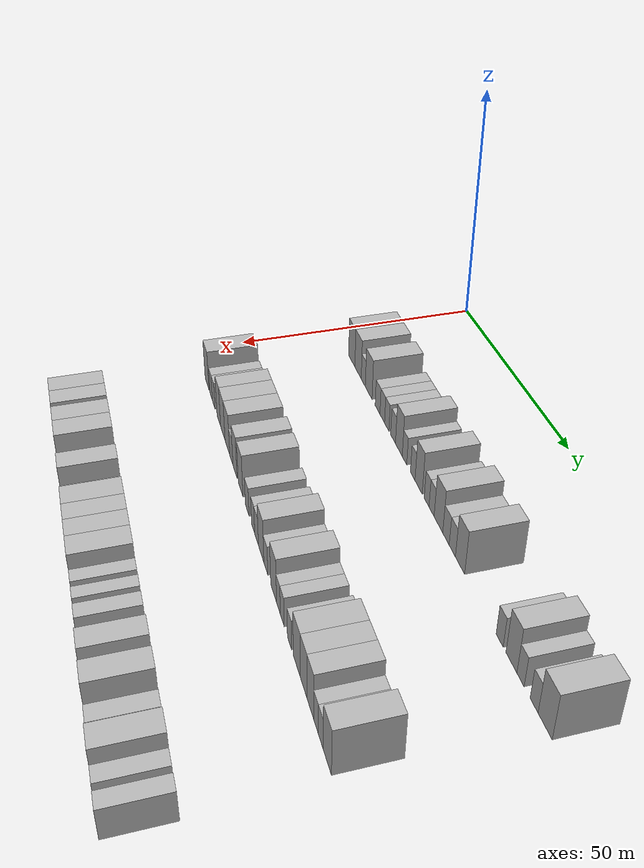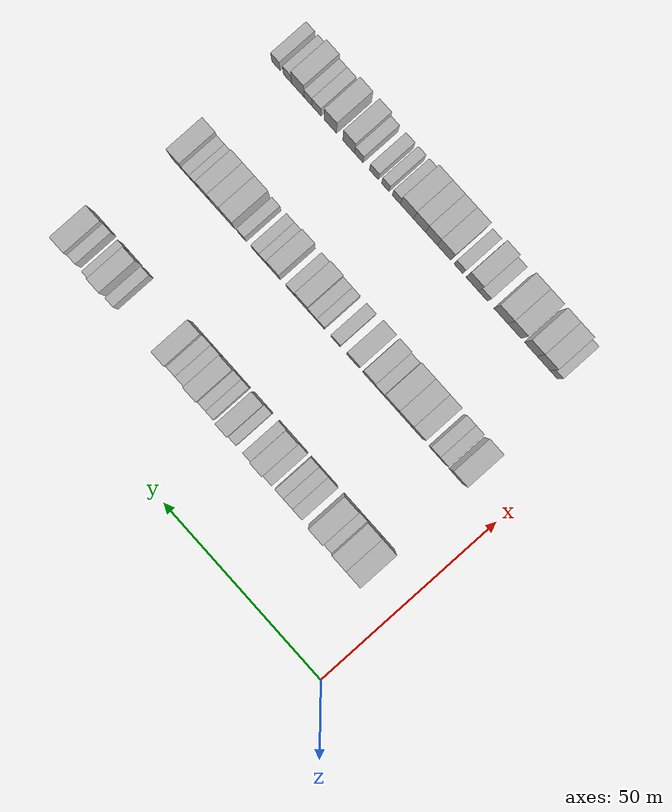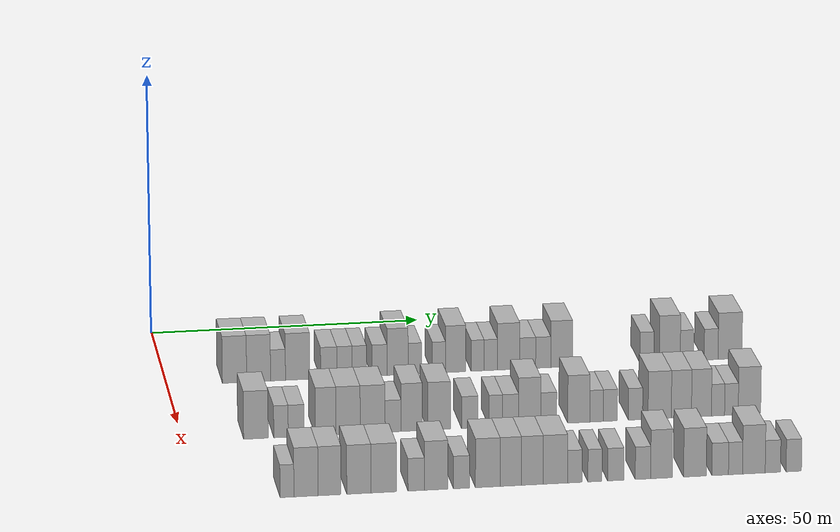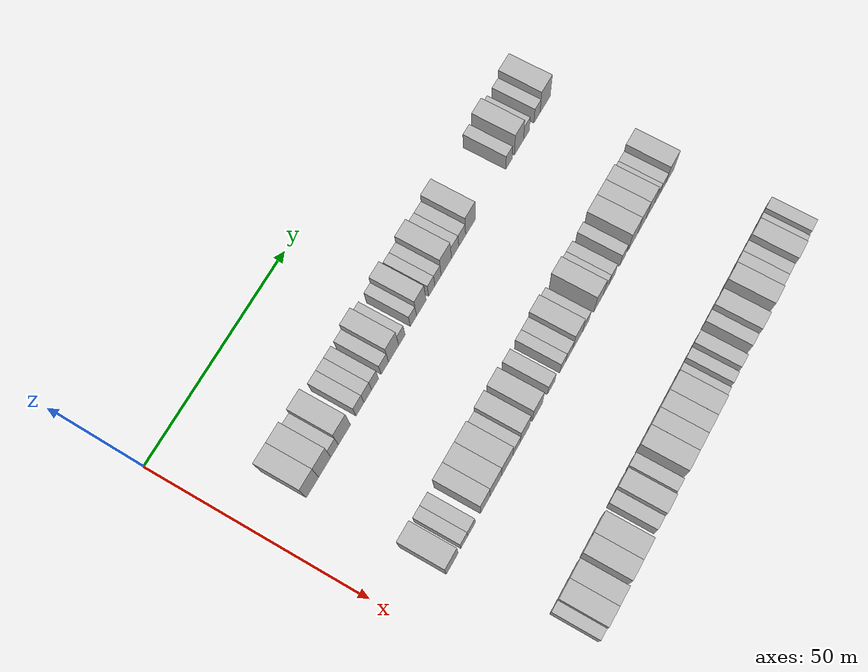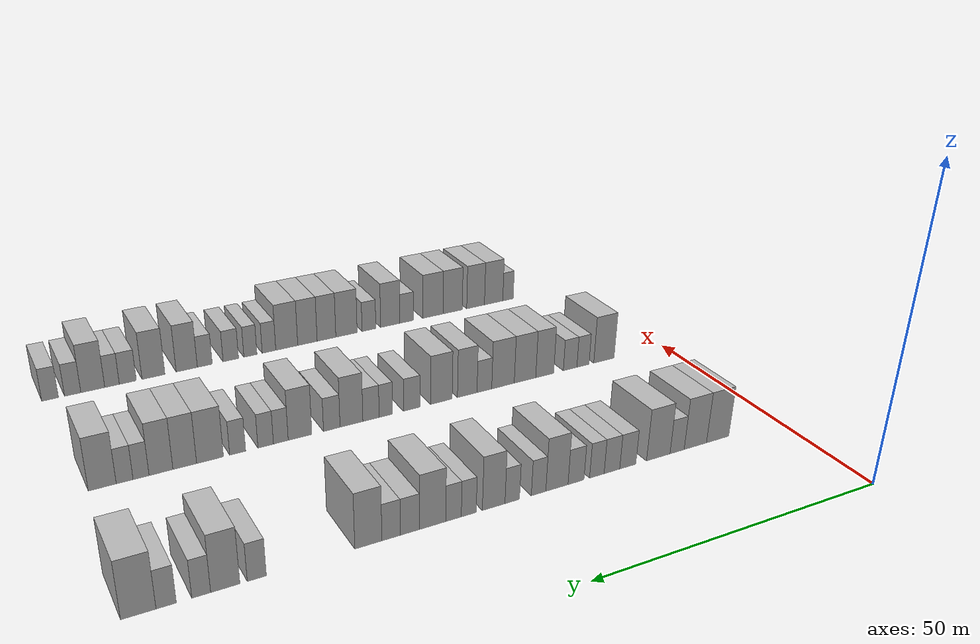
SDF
<sdf version="1.6">
 <world name="default">
  <model name="building_75">
   <static>1</static>
   <pose>25.0000 12.3740 0 0.000000 0.000000 0.000000</pose>
   <link name="link">
    <pose>0 0 4.50 0 0 0</pose>
    <collision name="collision"><geometry><box><size>10.0000 4.4400 9.0000</size></box></geometry></collision>
    <visual name="visual">
     <cast_shadows>0</cast_shadows>
     <geometry><box><size>10.0000 4.4400 9.0000</size></box></geometry>
     <material>
      <script>
       <uri>model://HANNAS_wall/materials/scripts</uri>
       <uri>model://HANNAS_wall/materials/textures</uri>
       <name>vrc/HANNAS_wall</name>
      </script>
     </material>
    </visual>
   </link>
  </model>
  <model name="building_76">
   <static>1</static>
   <pose>25.0000 16.7879 0 0.000000 0.000000 0.000000</pose>
   <link name="link">
    <pose>0 0 4.50 0 0 0</pose>
    <collision name="collision"><geometry><box><size>10.0000 4.3877 9.0000</size></box></geometry></collision>
    <visual name="visual">
     <cast_shadows>0</cast_shadows>
     <geometry><box><size>10.0000 4.3877 9.0000</size></box></geometry>
     <material>
      <script>
       <uri>model://HANNAS_wall/materials/scripts</uri>
       <uri>model://HANNAS_wall/materials/textures</uri>
       <name>vrc/HANNAS_wall</name>
      </script>
     </material>
    </visual>
   </link>
  </model>
  <model name="building_77">
   <static>1</static>
   <pose>25.0000 20.3499 0 0.000000 0.000000 0.000000</pose>
   <link name="link">
    <pose>0 0 3.00 0 0 0</pose>
    <collision name="collision"><geometry><box><size>10.0000 2.7363 6.0000</size></box></geometry></collision>
    <visual name="visual">
     <cast_shadows>0</cast_shadows>
     <geometry><box><size>10.0000 2.7363 6.0000</size></box></geometry>
     <material>
      <script>
       <uri>model://HANNAS_wall/materials/scripts</uri>
       <uri>model://HANNAS_wall/materials/textures</uri>
       <name>vrc/HANNAS_wall</name>
      </script>
     </material>
    </visual>
   </link>
  </model>
  <model name="building_78">
   <static>1</static>
   <pose>25.0000 23.9471 0 0.000000 0.000000 0.000000</pose>
   <link name="link">
    <pose>0 0 4.50 0 0 0</pose>
    <collision name="collision"><geometry><box><size>10.0000 4.4583 9.0000</size></box></geometry></collision>
    <visual name="visual">
     <cast_shadows>0</cast_shadows>
     <geometry><box><size>10.0000 4.4583 9.0000</size></box></geometry>
     <material>
      <script>
       <uri>model://HANNAS_wall/materials/scripts</uri>
       <uri>model://HANNAS_wall/materials/textures</uri>
       <name>vrc/HANNAS_wall</name>
      </script>
     </material>
    </visual>
   </link>
  </model>
  <model name="building_79">
   <static>1</static>
   <pose>25.0000 29.6673 0 0.000000 0.000000 0.000000</pose>
   <link name="link">
    <pose>0 0 3.00 0 0 0</pose>
    <collision name="collision"><geometry><box><size>10.0000 2.9820 6.0000</size></box></geometry></collision>
    <visual name="visual">
     <cast_shadows>0</cast_shadows>
     <geometry><box><size>10.0000 2.9820 6.0000</size></box></geometry>
     <material>
      <script>
       <uri>model://HANNAS_wall/materials/scripts</uri>
       <uri>model://HANNAS_wall/materials/textures</uri>
       <name>vrc/HANNAS_wall</name>
      </script>
     </material>
    </visual>
   </link>
  </model>
  <model name="building_80">
   <static>1</static>
   <pose>25.0000 32.5786 0 0.000000 0.000000 0.000000</pose>
   <link name="link">
    <pose>0 0 3.00 0 0 0</pose>
    <collision name="collision"><geometry><box><size>10.0000 2.8407 6.0000</size></box></geometry></collision>
    <visual name="visual">
     <cast_shadows>0</cast_shadows>
     <geometry><box><size>10.0000 2.8407 6.0000</size></box></geometry>
     <material>
      <script>
       <uri>model://HANNAS_wall/materials/scripts</uri>
       <uri>model://HANNAS_wall/materials/textures</uri>
       <name>vrc/HANNAS_wall</name>
      </script>
     </material>
    </visual>
   </link>
  </model>
  <model name="building_81">
   <static>1</static>
   <pose>25.0000 35.3059 0 0.000000 0.000000 0.000000</pose>
   <link name="link">
    <pose>0 0 3.00 0 0 0</pose>
    <collision name="collision"><geometry><box><size>10.0000 2.6139 6.0000</size></box></geometry></collision>
    <visual name="visual">
     <cast_shadows>0</cast_shadows>
     <geometry><box><size>10.0000 2.6139 6.0000</size></box></geometry>
     <material>
      <script>
       <uri>model://HANNAS_wall/materials/scripts</uri>
       <uri>model://HANNAS_wall/materials/textures</uri>
       <name>vrc/HANNAS_wall</name>
      </script>
     </material>
    </visual>
   </link>
  </model>
  <model name="building_82">
   <static>1</static>
   <pose>25.0000 39.0211 0 0.000000 0.000000 0.000000</pose>
   <link name="link">
    <pose>0 0 3.00 0 0 0</pose>
    <collision name="collision"><geometry><box><size>10.0000 2.8164 6.0000</size></box></geometry></collision>
    <visual name="visual">
     <cast_shadows>0</cast_shadows>
     <geometry><box><size>10.0000 2.8164 6.0000</size></box></geometry>
     <material>
      <script>
       <uri>model://HANNAS_wall/materials/scripts</uri>
       <uri>model://HANNAS_wall/materials/textures</uri>
       <name>vrc/HANNAS_wall</name>
      </script>
     </material>
    </visual>
   </link>
  </model>
  <model name="building_83">
   <static>1</static>
   <pose>25.0000 42.3592 0 0.000000 0.000000 0.000000</pose>
   <link name="link">
    <pose>0 0 4.50 0 0 0</pose>
    <collision name="collision"><geometry><box><size>10.0000 3.8599 9.0000</size></box></geometry></collision>
    <visual name="visual">
     <cast_shadows>0</cast_shadows>
     <geometry><box><size>10.0000 3.8599 9.0000</size></box></geometry>
     <material>
      <script>
       <uri>model://HANNAS_wall/materials/scripts</uri>
       <uri>model://HANNAS_wall/materials/textures</uri>
       <name>vrc/HANNAS_wall</name>
      </script>
     </material>
    </visual>
   </link>
  </model>
  <model name="building_84">
   <static>1</static>
   <pose>25.0000 45.5304 0 0.000000 0.000000 0.000000</pose>
   <link name="link">
    <pose>0 0 3.00 0 0 0</pose>
    <collision name="collision"><geometry><box><size>10.0000 2.4823 6.0000</size></box></geometry></collision>
    <visual name="visual">
     <cast_shadows>0</cast_shadows>
     <geometry><box><size>10.0000 2.4823 6.0000</size></box></geometry>
     <material>
      <script>
       <uri>model://HANNAS_wall/materials/scripts</uri>
       <uri>model://HANNAS_wall/materials/textures</uri>
       <name>vrc/HANNAS_wall</name>
      </script>
     </material>
    </visual>
   </link>
  </model>
  <model name="building_85">
   <static>1</static>
   <pose>25.0000 49.9913 0 0.000000 0.000000 0.000000</pose>
   <link name="link">
    <pose>0 0 3.00 0 0 0</pose>
    <collision name="collision"><geometry><box><size>10.0000 2.4395 6.0000</size></box></geometry></collision>
    <visual name="visual">
     <cast_shadows>0</cast_shadows>
     <geometry><box><size>10.0000 2.4395 6.0000</size></box></geometry>
     <material>
      <script>
       <uri>model://HANNAS_wall/materials/scripts</uri>
       <uri>model://HANNAS_wall/materials/textures</uri>
       <name>vrc/HANNAS_wall</name>
      </script>
     </material>
    </visual>
   </link>
  </model>
  <model name="building_86">
   <static>1</static>
   <pose>25.0000 53.0759 0 0.000000 0.000000 0.000000</pose>
   <link name="link">
    <pose>0 0 4.50 0 0 0</pose>
    <collision name="collision"><geometry><box><size>10.0000 3.7297 9.0000</size></box></geometry></collision>
    <visual name="visual">
     <cast_shadows>0</cast_shadows>
     <geometry><box><size>10.0000 3.7297 9.0000</size></box></geometry>
     <material>
      <script>
       <uri>model://HANNAS_wall/materials/scripts</uri>
       <uri>model://HANNAS_wall/materials/textures</uri>
       <name>vrc/HANNAS_wall</name>
      </script>
     </material>
    </visual>
   </link>
  </model>
  <model name="building_87">
   <static>1</static>
   <pose>25.0000 57.1424 0 0.000000 0.000000 0.000000</pose>
   <link name="link">
    <pose>0 0 3.00 0 0 0</pose>
    <collision name="collision"><geometry><box><size>10.0000 2.4033 6.0000</size></box></geometry></collision>
    <visual name="visual">
     <cast_shadows>0</cast_shadows>
     <geometry><box><size>10.0000 2.4033 6.0000</size></box></geometry>
     <material>
      <script>
       <uri>model://HANNAS_wall/materials/scripts</uri>
       <uri>model://HANNAS_wall/materials/textures</uri>
       <name>vrc/HANNAS_wall</name>
      </script>
     </material>
    </visual>
   </link>
  </model>
  <model name="building_88">
   <static>1</static>
   <pose>25.0000 59.5904 0 0.000000 0.000000 0.000000</pose>
   <link name="link">
    <pose>0 0 3.00 0 0 0</pose>
    <collision name="collision"><geometry><box><size>10.0000 2.4928 6.0000</size></box></geometry></collision>
    <visual name="visual">
     <cast_shadows>0</cast_shadows>
     <geometry><box><size>10.0000 2.4928 6.0000</size></box></geometry>
     <material>
      <script>
       <uri>model://HANNAS_wall/materials/scripts</uri>
       <uri>model://HANNAS_wall/materials/textures</uri>
       <name>vrc/HANNAS_wall</name>
      </script>
     </material>
    </visual>
   </link>
  </model>
  <model name="building_89">
   <static>1</static>
   <pose>25.0000 62.8925 0 0.000000 0.000000 0.000000</pose>
   <link name="link">
    <pose>0 0 4.50 0 0 0</pose>
    <collision name="collision"><geometry><box><size>10.0000 4.1114 9.0000</size></box></geometry></collision>
    <visual name="visual">
     <cast_shadows>0</cast_shadows>
     <geometry><box><size>10.0000 4.1114 9.0000</size></box></geometry>
     <material>
      <script>
       <uri>model://HANNAS_wall/materials/scripts</uri>
       <uri>model://HANNAS_wall/materials/textures</uri>
       <name>vrc/HANNAS_wall</name>
      </script>
     </material>
    </visual>
   </link>
  </model>
  <model name="building_90">
   <static>1</static>
   <pose>25.0000 66.4230 0 0.000000 0.000000 0.000000</pose>
   <link name="link">
    <pose>0 0 3.00 0 0 0</pose>
    <collision name="collision"><geometry><box><size>10.0000 2.9495 6.0000</size></box></geometry></collision>
    <visual name="visual">
     <cast_shadows>0</cast_shadows>
     <geometry><box><size>10.0000 2.9495 6.0000</size></box></geometry>
     <material>
      <script>
       <uri>model://HANNAS_wall/materials/scripts</uri>
       <uri>model://HANNAS_wall/materials/textures</uri>
       <name>vrc/HANNAS_wall</name>
      </script>
     </material>
    </visual>
   </link>
  </model>
  <model name="building_91">
   <static>1</static>
   <pose>25.0000 69.2997 0 0.000000 0.000000 0.000000</pose>
   <link name="link">
    <pose>0 0 3.00 0 0 0</pose>
    <collision name="collision"><geometry><box><size>10.0000 2.8040 6.0000</size></box></geometry></collision>
    <visual name="visual">
     <cast_shadows>0</cast_shadows>
     <geometry><box><size>10.0000 2.8040 6.0000</size></box></geometry>
     <material>
      <script>
       <uri>model://HANNAS_wall/materials/scripts</uri>
       <uri>model://HANNAS_wall/materials/textures</uri>
       <name>vrc/HANNAS_wall</name>
      </script>
     </material>
    </visual>
   </link>
  </model>
  <model name="building_92">
   <static>1</static>
   <pose>25.0000 72.7182 0 0.000000 0.000000 0.000000</pose>
   <link name="link">
    <pose>0 0 4.50 0 0 0</pose>
    <collision name="collision"><geometry><box><size>10.0000 4.0328 9.0000</size></box></geometry></collision>
    <visual name="visual">
     <cast_shadows>0</cast_shadows>
     <geometry><box><size>10.0000 4.0328 9.0000</size></box></geometry>
     <material>
      <script>
       <uri>model://HANNAS_wall/materials/scripts</uri>
       <uri>model://HANNAS_wall/materials/textures</uri>
       <name>vrc/HANNAS_wall</name>
      </script>
     </material>
    </visual>
   </link>
  </model>
  <model name="building_93">
   <static>1</static>
   <pose>25.0000 88.6473 0 0.000000 0.000000 0.000000</pose>
   <link name="link">
    <pose>0 0 3.00 0 0 0</pose>
    <collision name="collision"><geometry><box><size>10.0000 2.6085 6.0000</size></box></geometry></collision>
    <visual name="visual">
     <cast_shadows>0</cast_shadows>
     <geometry><box><size>10.0000 2.6085 6.0000</size></box></geometry>
     <material>
      <script>
       <uri>model://HANNAS_wall/materials/scripts</uri>
       <uri>model://HANNAS_wall/materials/textures</uri>
       <name>vrc/HANNAS_wall</name>
      </script>
     </material>
    </visual>
   </link>
  </model>
  <model name="building_94">
   <static>1</static>
   <pose>25.0000 92.9032 0 0.000000 0.000000 0.000000</pose>
   <link name="link">
    <pose>0 0 4.50 0 0 0</pose>
    <collision name="collision"><geometry><box><size>10.0000 3.9033 9.0000</size></box></geometry></collision>
    <visual name="visual">
     <cast_shadows>0</cast_shadows>
     <geometry><box><size>10.0000 3.9033 9.0000</size></box></geometry>
     <material>
      <script>
       <uri>model://HANNAS_wall/materials/scripts</uri>
       <uri>model://HANNAS_wall/materials/textures</uri>
       <name>vrc/HANNAS_wall</name>
      </script>
     </material>
    </visual>
   </link>
  </model>
  <model name="building_95">
   <static>1</static>
   <pose>25.0000 96.0945 0 0.000000 0.000000 0.000000</pose>
   <link name="link">
    <pose>0 0 3.00 0 0 0</pose>
    <collision name="collision"><geometry><box><size>10.0000 2.4793 6.0000</size></box></geometry></collision>
    <visual name="visual">
     <cast_shadows>0</cast_shadows>
     <geometry><box><size>10.0000 2.4793 6.0000</size></box></geometry>
     <material>
      <script>
       <uri>model://HANNAS_wall/materials/scripts</uri>
       <uri>model://HANNAS_wall/materials/textures</uri>
       <name>vrc/HANNAS_wall</name>
      </script>
     </material>
    </visual>
   </link>
  </model>
  <model name="building_96">
   <static>1</static>
   <pose>25.0000 100.6354 0 0.000000 0.000000 0.000000</pose>
   <link name="link">
    <pose>0 0 3.00 0 0 0</pose>
    <collision name="collision"><geometry><box><size>10.0000 2.6025 6.0000</size></box></geometry></collision>
    <visual name="visual">
     <cast_shadows>0</cast_shadows>
     <geometry><box><size>10.0000 2.6025 6.0000</size></box></geometry>
     <material>
      <script>
       <uri>model://HANNAS_wall/materials/scripts</uri>
       <uri>model://HANNAS_wall/materials/textures</uri>
       <name>vrc/HANNAS_wall</name>
      </script>
     </material>
    </visual>
   </link>
  </model>
  <model name="building_97">
   <static>1</static>
   <pose>25.0000 104.1693 0 0.000000 0.000000 0.000000</pose>
   <link name="link">
    <pose>0 0 4.50 0 0 0</pose>
    <collision name="collision"><geometry><box><size>10.0000 4.4653 9.0000</size></box></geometry></collision>
    <visual name="visual">
     <cast_shadows>0</cast_shadows>
     <geometry><box><size>10.0000 4.4653 9.0000</size></box></geometry>
     <material>
      <script>
       <uri>model://HANNAS_wall/materials/scripts</uri>
       <uri>model://HANNAS_wall/materials/textures</uri>
       <name>vrc/HANNAS_wall</name>
      </script>
     </material>
    </visual>
   </link>
  </model>
  <model name="building_208">
   <static>1</static>
   <pose>55.0000 12.9879 0 0.000000 0.000000 0.000000</pose>
   <link name="link">
    <pose>0 0 4.50 0 0 0</pose>
    <collision name="collision"><geometry><box><size>10.0000 4.3917 9.0000</size></box></geometry></collision>
    <visual name="visual">
     <cast_shadows>0</cast_shadows>
     <geometry><box><size>10.0000 4.3917 9.0000</size></box></geometry>
     <material>
      <script>
       <uri>model://HANNAS_wall/materials/scripts</uri>
       <uri>model://HANNAS_wall/materials/textures</uri>
       <name>vrc/HANNAS_wall</name>
      </script>
     </material>
    </visual>
   </link>
  </model>
  <model name="building_209">
   <static>1</static>
   <pose>55.0000 17.4718 0 0.000000 0.000000 0.000000</pose>
   <link name="link">
    <pose>0 0 3.00 0 0 0</pose>
    <collision name="collision"><geometry><box><size>10.0000 2.5762 6.0000</size></box></geometry></collision>
    <visual name="visual">
     <cast_shadows>0</cast_shadows>
     <geometry><box><size>10.0000 2.5762 6.0000</size></box></geometry>
     <material>
      <script>
       <uri>model://HANNAS_wall/materials/scripts</uri>
       <uri>model://HANNAS_wall/materials/textures</uri>
       <name>vrc/HANNAS_wall</name>
      </script>
     </material>
    </visual>
   </link>
  </model>
  <model name="building_210">
   <static>1</static>
   <pose>55.0000 20.1819 0 0.000000 0.000000 0.000000</pose>
   <link name="link">
    <pose>0 0 3.00 0 0 0</pose>
    <collision name="collision"><geometry><box><size>10.0000 2.8440 6.0000</size></box></geometry></collision>
    <visual name="visual">
     <cast_shadows>0</cast_shadows>
     <geometry><box><size>10.0000 2.8440 6.0000</size></box></geometry>
     <material>
      <script>
       <uri>model://HANNAS_wall/materials/scripts</uri>
       <uri>model://HANNAS_wall/materials/textures</uri>
       <name>vrc/HANNAS_wall</name>
      </script>
     </material>
    </visual>
   </link>
  </model>
  <model name="building_211">
   <static>1</static>
   <pose>55.0000 25.4542 0 0.000000 0.000000 0.000000</pose>
   <link name="link">
    <pose>0 0 4.50 0 0 0</pose>
    <collision name="collision"><geometry><box><size>10.0000 3.7005 9.0000</size></box></geometry></collision>
    <visual name="visual">
     <cast_shadows>0</cast_shadows>
     <geometry><box><size>10.0000 3.7005 9.0000</size></box></geometry>
     <material>
      <script>
       <uri>model://HANNAS_wall/materials/scripts</uri>
       <uri>model://HANNAS_wall/materials/textures</uri>
       <name>vrc/HANNAS_wall</name>
      </script>
     </material>
    </visual>
   </link>
  </model>
  <model name="building_212">
   <static>1</static>
   <pose>55.0000 29.4732 0 0.000000 0.000000 0.000000</pose>
   <link name="link">
    <pose>0 0 4.50 0 0 0</pose>
    <collision name="collision"><geometry><box><size>10.0000 4.3376 9.0000</size></box></geometry></collision>
    <visual name="visual">
     <cast_shadows>0</cast_shadows>
     <geometry><box><size>10.0000 4.3376 9.0000</size></box></geometry>
     <material>
      <script>
       <uri>model://HANNAS_wall/materials/scripts</uri>
       <uri>model://HANNAS_wall/materials/textures</uri>
       <name>vrc/HANNAS_wall</name>
      </script>
     </material>
    </visual>
   </link>
  </model>
  <model name="building_213">
   <static>1</static>
   <pose>55.0000 33.8764 0 0.000000 0.000000 0.000000</pose>
   <link name="link">
    <pose>0 0 4.50 0 0 0</pose>
    <collision name="collision"><geometry><box><size>10.0000 4.4688 9.0000</size></box></geometry></collision>
    <visual name="visual">
     <cast_shadows>0</cast_shadows>
     <geometry><box><size>10.0000 4.4688 9.0000</size></box></geometry>
     <material>
      <script>
       <uri>model://HANNAS_wall/materials/scripts</uri>
       <uri>model://HANNAS_wall/materials/textures</uri>
       <name>vrc/HANNAS_wall</name>
      </script>
     </material>
    </visual>
   </link>
  </model>
  <model name="building_214">
   <static>1</static>
   <pose>55.0000 37.5516 0 0.000000 0.000000 0.000000</pose>
   <link name="link">
    <pose>0 0 3.00 0 0 0</pose>
    <collision name="collision"><geometry><box><size>10.0000 2.8815 6.0000</size></box></geometry></collision>
    <visual name="visual">
     <cast_shadows>0</cast_shadows>
     <geometry><box><size>10.0000 2.8815 6.0000</size></box></geometry>
     <material>
      <script>
       <uri>model://HANNAS_wall/materials/scripts</uri>
       <uri>model://HANNAS_wall/materials/textures</uri>
       <name>vrc/HANNAS_wall</name>
      </script>
     </material>
    </visual>
   </link>
  </model>
  <model name="building_215">
   <static>1</static>
   <pose>55.0000 40.8733 0 0.000000 0.000000 0.000000</pose>
   <link name="link">
    <pose>0 0 4.50 0 0 0</pose>
    <collision name="collision"><geometry><box><size>10.0000 3.7618 9.0000</size></box></geometry></collision>
    <visual name="visual">
     <cast_shadows>0</cast_shadows>
     <geometry><box><size>10.0000 3.7618 9.0000</size></box></geometry>
     <material>
      <script>
       <uri>model://HANNAS_wall/materials/scripts</uri>
       <uri>model://HANNAS_wall/materials/textures</uri>
       <name>vrc/HANNAS_wall</name>
      </script>
     </material>
    </visual>
   </link>
  </model>
  <model name="building_216">
   <static>1</static>
   <pose>55.0000 45.7939 0 0.000000 0.000000 0.000000</pose>
   <link name="link">
    <pose>0 0 4.50 0 0 0</pose>
    <collision name="collision"><geometry><box><size>10.0000 4.0795 9.0000</size></box></geometry></collision>
    <visual name="visual">
     <cast_shadows>0</cast_shadows>
     <geometry><box><size>10.0000 4.0795 9.0000</size></box></geometry>
     <material>
      <script>
       <uri>model://HANNAS_wall/materials/scripts</uri>
       <uri>model://HANNAS_wall/materials/textures</uri>
       <name>vrc/HANNAS_wall</name>
      </script>
     </material>
    </visual>
   </link>
  </model>
  <model name="building_217">
   <static>1</static>
   <pose>55.0000 51.3333 0 0.000000 0.000000 0.000000</pose>
   <link name="link">
    <pose>0 0 3.00 0 0 0</pose>
    <collision name="collision"><geometry><box><size>10.0000 2.9992 6.0000</size></box></geometry></collision>
    <visual name="visual">
     <cast_shadows>0</cast_shadows>
     <geometry><box><size>10.0000 2.9992 6.0000</size></box></geometry>
     <material>
      <script>
       <uri>model://HANNAS_wall/materials/scripts</uri>
       <uri>model://HANNAS_wall/materials/textures</uri>
       <name>vrc/HANNAS_wall</name>
      </script>
     </material>
    </visual>
   </link>
  </model>
  <model name="building_218">
   <static>1</static>
   <pose>55.0000 56.0433 0 0.000000 0.000000 0.000000</pose>
   <link name="link">
    <pose>0 0 3.00 0 0 0</pose>
    <collision name="collision"><geometry><box><size>10.0000 2.4207 6.0000</size></box></geometry></collision>
    <visual name="visual">
     <cast_shadows>0</cast_shadows>
     <geometry><box><size>10.0000 2.4207 6.0000</size></box></geometry>
     <material>
      <script>
       <uri>model://HANNAS_wall/materials/scripts</uri>
       <uri>model://HANNAS_wall/materials/textures</uri>
       <name>vrc/HANNAS_wall</name>
      </script>
     </material>
    </visual>
   </link>
  </model>
  <model name="building_219">
   <static>1</static>
   <pose>55.0000 58.7007 0 0.000000 0.000000 0.000000</pose>
   <link name="link">
    <pose>0 0 3.00 0 0 0</pose>
    <collision name="collision"><geometry><box><size>10.0000 2.8941 6.0000</size></box></geometry></collision>
    <visual name="visual">
     <cast_shadows>0</cast_shadows>
     <geometry><box><size>10.0000 2.8941 6.0000</size></box></geometry>
     <material>
      <script>
       <uri>model://HANNAS_wall/materials/scripts</uri>
       <uri>model://HANNAS_wall/materials/textures</uri>
       <name>vrc/HANNAS_wall</name>
      </script>
     </material>
    </visual>
   </link>
  </model>
  <model name="building_220">
   <static>1</static>
   <pose>55.0000 62.1521 0 0.000000 0.000000 0.000000</pose>
   <link name="link">
    <pose>0 0 4.50 0 0 0</pose>
    <collision name="collision"><geometry><box><size>10.0000 4.0088 9.0000</size></box></geometry></collision>
    <visual name="visual">
     <cast_shadows>0</cast_shadows>
     <geometry><box><size>10.0000 4.0088 9.0000</size></box></geometry>
     <material>
      <script>
       <uri>model://HANNAS_wall/materials/scripts</uri>
       <uri>model://HANNAS_wall/materials/textures</uri>
       <name>vrc/HANNAS_wall</name>
      </script>
     </material>
    </visual>
   </link>
  </model>
  <model name="building_221">
   <static>1</static>
   <pose>55.0000 65.5853 0 0.000000 0.000000 0.000000</pose>
   <link name="link">
    <pose>0 0 3.00 0 0 0</pose>
    <collision name="collision"><geometry><box><size>10.0000 2.8575 6.0000</size></box></geometry></collision>
    <visual name="visual">
     <cast_shadows>0</cast_shadows>
     <geometry><box><size>10.0000 2.8575 6.0000</size></box></geometry>
     <material>
      <script>
       <uri>model://HANNAS_wall/materials/scripts</uri>
       <uri>model://HANNAS_wall/materials/textures</uri>
       <name>vrc/HANNAS_wall</name>
      </script>
     </material>
    </visual>
   </link>
  </model>
  <model name="building_222">
   <static>1</static>
   <pose>55.0000 71.0098 0 0.000000 0.000000 0.000000</pose>
   <link name="link">
    <pose>0 0 4.50 0 0 0</pose>
    <collision name="collision"><geometry><box><size>10.0000 3.9915 9.0000</size></box></geometry></collision>
    <visual name="visual">
     <cast_shadows>0</cast_shadows>
     <geometry><box><size>10.0000 3.9915 9.0000</size></box></geometry>
     <material>
      <script>
       <uri>model://HANNAS_wall/materials/scripts</uri>
       <uri>model://HANNAS_wall/materials/textures</uri>
       <name>vrc/HANNAS_wall</name>
      </script>
     </material>
    </visual>
   </link>
  </model>
  <model name="building_223">
   <static>1</static>
   <pose>55.0000 74.2320 0 0.000000 0.000000 0.000000</pose>
   <link name="link">
    <pose>0 0 3.00 0 0 0</pose>
    <collision name="collision"><geometry><box><size>10.0000 2.4529 6.0000</size></box></geometry></collision>
    <visual name="visual">
     <cast_shadows>0</cast_shadows>
     <geometry><box><size>10.0000 2.4529 6.0000</size></box></geometry>
     <material>
      <script>
       <uri>model://HANNAS_wall/materials/scripts</uri>
       <uri>model://HANNAS_wall/materials/textures</uri>
       <name>vrc/HANNAS_wall</name>
      </script>
     </material>
    </visual>
   </link>
  </model>
  <model name="building_224">
   <static>1</static>
   <pose>55.0000 76.7324 0 0.000000 0.000000 0.000000</pose>
   <link name="link">
    <pose>0 0 3.00 0 0 0</pose>
    <collision name="collision"><geometry><box><size>10.0000 2.5478 6.0000</size></box></geometry></collision>
    <visual name="visual">
     <cast_shadows>0</cast_shadows>
     <geometry><box><size>10.0000 2.5478 6.0000</size></box></geometry>
     <material>
      <script>
       <uri>model://HANNAS_wall/materials/scripts</uri>
       <uri>model://HANNAS_wall/materials/textures</uri>
       <name>vrc/HANNAS_wall</name>
      </script>
     </material>
    </visual>
   </link>
  </model>
  <model name="building_225">
   <static>1</static>
   <pose>55.0000 81.2901 0 0.000000 0.000000 0.000000</pose>
   <link name="link">
    <pose>0 0 3.00 0 0 0</pose>
    <collision name="collision"><geometry><box><size>10.0000 2.5677 6.0000</size></box></geometry></collision>
    <visual name="visual">
     <cast_shadows>0</cast_shadows>
     <geometry><box><size>10.0000 2.5677 6.0000</size></box></geometry>
     <material>
      <script>
       <uri>model://HANNAS_wall/materials/scripts</uri>
       <uri>model://HANNAS_wall/materials/textures</uri>
       <name>vrc/HANNAS_wall</name>
      </script>
     </material>
    </visual>
   </link>
  </model>
  <model name="building_226">
   <static>1</static>
   <pose>55.0000 85.6870 0 0.000000 0.000000 0.000000</pose>
   <link name="link">
    <pose>0 0 4.50 0 0 0</pose>
    <collision name="collision"><geometry><box><size>10.0000 4.2260 9.0000</size></box></geometry></collision>
    <visual name="visual">
     <cast_shadows>0</cast_shadows>
     <geometry><box><size>10.0000 4.2260 9.0000</size></box></geometry>
     <material>
      <script>
       <uri>model://HANNAS_wall/materials/scripts</uri>
       <uri>model://HANNAS_wall/materials/textures</uri>
       <name>vrc/HANNAS_wall</name>
      </script>
     </material>
    </visual>
   </link>
  </model>
  <model name="building_227">
   <static>1</static>
   <pose>55.0000 89.6353 0 0.000000 0.000000 0.000000</pose>
   <link name="link">
    <pose>0 0 4.50 0 0 0</pose>
    <collision name="collision"><geometry><box><size>10.0000 3.6706 9.0000</size></box></geometry></collision>
    <visual name="visual">
     <cast_shadows>0</cast_shadows>
     <geometry><box><size>10.0000 3.6706 9.0000</size></box></geometry>
     <material>
      <script>
       <uri>model://HANNAS_wall/materials/scripts</uri>
       <uri>model://HANNAS_wall/materials/textures</uri>
       <name>vrc/HANNAS_wall</name>
      </script>
     </material>
    </visual>
   </link>
  </model>
  <model name="building_228">
   <static>1</static>
   <pose>55.0000 93.2864 0 0.000000 0.000000 0.000000</pose>
   <link name="link">
    <pose>0 0 4.50 0 0 0</pose>
    <collision name="collision"><geometry><box><size>10.0000 3.6316 9.0000</size></box></geometry></collision>
    <visual name="visual">
     <cast_shadows>0</cast_shadows>
     <geometry><box><size>10.0000 3.6316 9.0000</size></box></geometry>
     <material>
      <script>
       <uri>model://HANNAS_wall/materials/scripts</uri>
       <uri>model://HANNAS_wall/materials/textures</uri>
       <name>vrc/HANNAS_wall</name>
      </script>
     </material>
    </visual>
   </link>
  </model>
  <model name="building_229">
   <static>1</static>
   <pose>55.0000 96.3025 0 0.000000 0.000000 0.000000</pose>
   <link name="link">
    <pose>0 0 3.00 0 0 0</pose>
    <collision name="collision"><geometry><box><size>10.0000 2.4007 6.0000</size></box></geometry></collision>
    <visual name="visual">
     <cast_shadows>0</cast_shadows>
     <geometry><box><size>10.0000 2.4007 6.0000</size></box></geometry>
     <material>
      <script>
       <uri>model://HANNAS_wall/materials/scripts</uri>
       <uri>model://HANNAS_wall/materials/textures</uri>
       <name>vrc/HANNAS_wall</name>
      </script>
     </material>
    </visual>
   </link>
  </model>
  <model name="building_230">
   <static>1</static>
   <pose>55.0000 98.7485 0 0.000000 0.000000 0.000000</pose>
   <link name="link">
    <pose>0 0 3.00 0 0 0</pose>
    <collision name="collision"><geometry><box><size>10.0000 2.4913 6.0000</size></box></geometry></collision>
    <visual name="visual">
     <cast_shadows>0</cast_shadows>
     <geometry><box><size>10.0000 2.4913 6.0000</size></box></geometry>
     <material>
      <script>
       <uri>model://HANNAS_wall/materials/scripts</uri>
       <uri>model://HANNAS_wall/materials/textures</uri>
       <name>vrc/HANNAS_wall</name>
      </script>
     </material>
    </visual>
   </link>
  </model>
  <model name="building_231">
   <static>1</static>
   <pose>55.0000 102.0431 0 0.000000 0.000000 0.000000</pose>
   <link name="link">
    <pose>0 0 4.50 0 0 0</pose>
    <collision name="collision"><geometry><box><size>10.0000 4.0979 9.0000</size></box></geometry></collision>
    <visual name="visual">
     <cast_shadows>0</cast_shadows>
     <geometry><box><size>10.0000 4.0979 9.0000</size></box></geometry>
     <material>
      <script>
       <uri>model://HANNAS_wall/materials/scripts</uri>
       <uri>model://HANNAS_wall/materials/textures</uri>
       <name>vrc/HANNAS_wall</name>
      </script>
     </material>
    </visual>
   </link>
  </model>
  <model name="building_350">
   <static>1</static>
   <pose>85.0000 15.0803 0 0.000000 0.000000 0.000000</pose>
   <link name="link">
    <pose>0 0 3.00 0 0 0</pose>
    <collision name="collision"><geometry><box><size>10.0000 2.4147 6.0000</size></box></geometry></collision>
    <visual name="visual">
     <cast_shadows>0</cast_shadows>
     <geometry><box><size>10.0000 2.4147 6.0000</size></box></geometry>
     <material>
      <script>
       <uri>model://HANNAS_wall/materials/scripts</uri>
       <uri>model://HANNAS_wall/materials/textures</uri>
       <name>vrc/HANNAS_wall</name>
      </script>
     </material>
    </visual>
   </link>
  </model>
  <model name="building_351">
   <static>1</static>
   <pose>85.0000 18.3816 0 0.000000 0.000000 0.000000</pose>
   <link name="link">
    <pose>0 0 4.50 0 0 0</pose>
    <collision name="collision"><geometry><box><size>10.0000 4.1878 9.0000</size></box></geometry></collision>
    <visual name="visual">
     <cast_shadows>0</cast_shadows>
     <geometry><box><size>10.0000 4.1878 9.0000</size></box></geometry>
     <material>
      <script>
       <uri>model://HANNAS_wall/materials/scripts</uri>
       <uri>model://HANNAS_wall/materials/textures</uri>
       <name>vrc/HANNAS_wall</name>
      </script>
     </material>
    </visual>
   </link>
  </model>
  <model name="building_352">
   <static>1</static>
   <pose>85.0000 22.4740 0 0.000000 0.000000 0.000000</pose>
   <link name="link">
    <pose>0 0 4.50 0 0 0</pose>
    <collision name="collision"><geometry><box><size>10.0000 3.9971 9.0000</size></box></geometry></collision>
    <visual name="visual">
     <cast_shadows>0</cast_shadows>
     <geometry><box><size>10.0000 3.9971 9.0000</size></box></geometry>
     <material>
      <script>
       <uri>model://HANNAS_wall/materials/scripts</uri>
       <uri>model://HANNAS_wall/materials/textures</uri>
       <name>vrc/HANNAS_wall</name>
      </script>
     </material>
    </visual>
   </link>
  </model>
  <model name="building_353">
   <static>1</static>
   <pose>85.0000 27.5834 0 0.000000 0.000000 0.000000</pose>
   <link name="link">
    <pose>0 0 4.50 0 0 0</pose>
    <collision name="collision"><geometry><box><size>10.0000 4.2217 9.0000</size></box></geometry></collision>
    <visual name="visual">
     <cast_shadows>0</cast_shadows>
     <geometry><box><size>10.0000 4.2217 9.0000</size></box></geometry>
     <material>
      <script>
       <uri>model://HANNAS_wall/materials/scripts</uri>
       <uri>model://HANNAS_wall/materials/textures</uri>
       <name>vrc/HANNAS_wall</name>
      </script>
     </material>
    </visual>
   </link>
  </model>
  <model name="building_354">
   <static>1</static>
   <pose>85.0000 31.9219 0 0.000000 0.000000 0.000000</pose>
   <link name="link">
    <pose>0 0 4.50 0 0 0</pose>
    <collision name="collision"><geometry><box><size>10.0000 4.4551 9.0000</size></box></geometry></collision>
    <visual name="visual">
     <cast_shadows>0</cast_shadows>
     <geometry><box><size>10.0000 4.4551 9.0000</size></box></geometry>
     <material>
      <script>
       <uri>model://HANNAS_wall/materials/scripts</uri>
       <uri>model://HANNAS_wall/materials/textures</uri>
       <name>vrc/HANNAS_wall</name>
      </script>
     </material>
    </visual>
   </link>
  </model>
  <model name="building_355">
   <static>1</static>
   <pose>85.0000 37.6023 0 0.000000 0.000000 0.000000</pose>
   <link name="link">
    <pose>0 0 3.00 0 0 0</pose>
    <collision name="collision"><geometry><box><size>10.0000 2.9057 6.0000</size></box></geometry></collision>
    <visual name="visual">
     <cast_shadows>0</cast_shadows>
     <geometry><box><size>10.0000 2.9057 6.0000</size></box></geometry>
     <material>
      <script>
       <uri>model://HANNAS_wall/materials/scripts</uri>
       <uri>model://HANNAS_wall/materials/textures</uri>
       <name>vrc/HANNAS_wall</name>
      </script>
     </material>
    </visual>
   </link>
  </model>
  <model name="building_356">
   <static>1</static>
   <pose>85.0000 41.0751 0 0.000000 0.000000 0.000000</pose>
   <link name="link">
    <pose>0 0 4.50 0 0 0</pose>
    <collision name="collision"><geometry><box><size>10.0000 4.0399 9.0000</size></box></geometry></collision>
    <visual name="visual">
     <cast_shadows>0</cast_shadows>
     <geometry><box><size>10.0000 4.0399 9.0000</size></box></geometry>
     <material>
      <script>
       <uri>model://HANNAS_wall/materials/scripts</uri>
       <uri>model://HANNAS_wall/materials/textures</uri>
       <name>vrc/HANNAS_wall</name>
      </script>
     </material>
    </visual>
   </link>
  </model>
  <model name="building_357">
   <static>1</static>
   <pose>85.0000 45.5191 0 0.000000 0.000000 0.000000</pose>
   <link name="link">
    <pose>0 0 3.00 0 0 0</pose>
    <collision name="collision"><geometry><box><size>10.0000 2.8479 6.0000</size></box></geometry></collision>
    <visual name="visual">
     <cast_shadows>0</cast_shadows>
     <geometry><box><size>10.0000 2.8479 6.0000</size></box></geometry>
     <material>
      <script>
       <uri>model://HANNAS_wall/materials/scripts</uri>
       <uri>model://HANNAS_wall/materials/textures</uri>
       <name>vrc/HANNAS_wall</name>
      </script>
     </material>
    </visual>
   </link>
  </model>
  <model name="building_358">
   <static>1</static>
   <pose>85.0000 50.1050 0 0.000000 0.000000 0.000000</pose>
   <link name="link">
    <pose>0 0 4.50 0 0 0</pose>
    <collision name="collision"><geometry><box><size>10.0000 4.3240 9.0000</size></box></geometry></collision>
    <visual name="visual">
     <cast_shadows>0</cast_shadows>
     <geometry><box><size>10.0000 4.3240 9.0000</size></box></geometry>
     <material>
      <script>
       <uri>model://HANNAS_wall/materials/scripts</uri>
       <uri>model://HANNAS_wall/materials/textures</uri>
       <name>vrc/HANNAS_wall</name>
      </script>
     </material>
    </visual>
   </link>
  </model>
  <model name="building_359">
   <static>1</static>
   <pose>85.0000 54.1375 0 0.000000 0.000000 0.000000</pose>
   <link name="link">
    <pose>0 0 4.50 0 0 0</pose>
    <collision name="collision"><geometry><box><size>10.0000 3.7408 9.0000</size></box></geometry></collision>
    <visual name="visual">
     <cast_shadows>0</cast_shadows>
     <geometry><box><size>10.0000 3.7408 9.0000</size></box></geometry>
     <material>
      <script>
       <uri>model://HANNAS_wall/materials/scripts</uri>
       <uri>model://HANNAS_wall/materials/textures</uri>
       <name>vrc/HANNAS_wall</name>
      </script>
     </material>
    </visual>
   </link>
  </model>
  <model name="building_360">
   <static>1</static>
   <pose>85.0000 57.9238 0 0.000000 0.000000 0.000000</pose>
   <link name="link">
    <pose>0 0 4.50 0 0 0</pose>
    <collision name="collision"><geometry><box><size>10.0000 3.8319 9.0000</size></box></geometry></collision>
    <visual name="visual">
     <cast_shadows>0</cast_shadows>
     <geometry><box><size>10.0000 3.8319 9.0000</size></box></geometry>
     <material>
      <script>
       <uri>model://HANNAS_wall/materials/scripts</uri>
       <uri>model://HANNAS_wall/materials/textures</uri>
       <name>vrc/HANNAS_wall</name>
      </script>
     </material>
    </visual>
   </link>
  </model>
  <model name="building_361">
   <static>1</static>
   <pose>85.0000 61.9732 0 0.000000 0.000000 0.000000</pose>
   <link name="link">
    <pose>0 0 4.50 0 0 0</pose>
    <collision name="collision"><geometry><box><size>10.0000 4.2667 9.0000</size></box></geometry></collision>
    <visual name="visual">
     <cast_shadows>0</cast_shadows>
     <geometry><box><size>10.0000 4.2667 9.0000</size></box></geometry>
     <material>
      <script>
       <uri>model://HANNAS_wall/materials/scripts</uri>
       <uri>model://HANNAS_wall/materials/textures</uri>
       <name>vrc/HANNAS_wall</name>
      </script>
     </material>
    </visual>
   </link>
  </model>
  <model name="building_362">
   <static>1</static>
   <pose>85.0000 65.4045 0 0.000000 0.000000 0.000000</pose>
   <link name="link">
    <pose>0 0 3.00 0 0 0</pose>
    <collision name="collision"><geometry><box><size>10.0000 2.5959 6.0000</size></box></geometry></collision>
    <visual name="visual">
     <cast_shadows>0</cast_shadows>
     <geometry><box><size>10.0000 2.5959 6.0000</size></box></geometry>
     <material>
      <script>
       <uri>model://HANNAS_wall/materials/scripts</uri>
       <uri>model://HANNAS_wall/materials/textures</uri>
       <name>vrc/HANNAS_wall</name>
      </script>
     </material>
    </visual>
   </link>
  </model>
  <model name="building_363">
   <static>1</static>
   <pose>85.0000 68.9368 0 0.000000 0.000000 0.000000</pose>
   <link name="link">
    <pose>0 0 3.00 0 0 0</pose>
    <collision name="collision"><geometry><box><size>10.0000 2.4686 6.0000</size></box></geometry></collision>
    <visual name="visual">
     <cast_shadows>0</cast_shadows>
     <geometry><box><size>10.0000 2.4686 6.0000</size></box></geometry>
     <material>
      <script>
       <uri>model://HANNAS_wall/materials/scripts</uri>
       <uri>model://HANNAS_wall/materials/textures</uri>
       <name>vrc/HANNAS_wall</name>
      </script>
     </material>
    </visual>
   </link>
  </model>
  <model name="building_364">
   <static>1</static>
   <pose>85.0000 72.6115 0 0.000000 0.000000 0.000000</pose>
   <link name="link">
    <pose>0 0 3.00 0 0 0</pose>
    <collision name="collision"><geometry><box><size>10.0000 2.8808 6.0000</size></box></geometry></collision>
    <visual name="visual">
     <cast_shadows>0</cast_shadows>
     <geometry><box><size>10.0000 2.8808 6.0000</size></box></geometry>
     <material>
      <script>
       <uri>model://HANNAS_wall/materials/scripts</uri>
       <uri>model://HANNAS_wall/materials/textures</uri>
       <name>vrc/HANNAS_wall</name>
      </script>
     </material>
    </visual>
   </link>
  </model>
  <model name="building_365">
   <static>1</static>
   <pose>85.0000 77.4120 0 0.000000 0.000000 0.000000</pose>
   <link name="link">
    <pose>0 0 3.00 0 0 0</pose>
    <collision name="collision"><geometry><box><size>10.0000 2.7200 6.0000</size></box></geometry></collision>
    <visual name="visual">
     <cast_shadows>0</cast_shadows>
     <geometry><box><size>10.0000 2.7200 6.0000</size></box></geometry>
     <material>
      <script>
       <uri>model://HANNAS_wall/materials/scripts</uri>
       <uri>model://HANNAS_wall/materials/textures</uri>
       <name>vrc/HANNAS_wall</name>
      </script>
     </material>
    </visual>
   </link>
  </model>
  <model name="building_366">
   <static>1</static>
   <pose>85.0000 80.6808 0 0.000000 0.000000 0.000000</pose>
   <link name="link">
    <pose>0 0 4.50 0 0 0</pose>
    <collision name="collision"><geometry><box><size>10.0000 3.8177 9.0000</size></box></geometry></collision>
    <visual name="visual">
     <cast_shadows>0</cast_shadows>
     <geometry><box><size>10.0000 3.8177 9.0000</size></box></geometry>
     <material>
      <script>
       <uri>model://HANNAS_wall/materials/scripts</uri>
       <uri>model://HANNAS_wall/materials/textures</uri>
       <name>vrc/HANNAS_wall</name>
      </script>
     </material>
    </visual>
   </link>
  </model>
  <model name="building_367">
   <static>1</static>
   <pose>85.0000 86.6011 0 0.000000 0.000000 0.000000</pose>
   <link name="link">
    <pose>0 0 4.50 0 0 0</pose>
    <collision name="collision"><geometry><box><size>10.0000 4.0229 9.0000</size></box></geometry></collision>
    <visual name="visual">
     <cast_shadows>0</cast_shadows>
     <geometry><box><size>10.0000 4.0229 9.0000</size></box></geometry>
     <material>
      <script>
       <uri>model://HANNAS_wall/materials/scripts</uri>
       <uri>model://HANNAS_wall/materials/textures</uri>
       <name>vrc/HANNAS_wall</name>
      </script>
     </material>
    </visual>
   </link>
  </model>
  <model name="building_368">
   <static>1</static>
   <pose>85.0000 91.0771 0 0.000000 0.000000 0.000000</pose>
   <link name="link">
    <pose>0 0 3.00 0 0 0</pose>
    <collision name="collision"><geometry><box><size>10.0000 2.9291 6.0000</size></box></geometry></collision>
    <visual name="visual">
     <cast_shadows>0</cast_shadows>
     <geometry><box><size>10.0000 2.9291 6.0000</size></box></geometry>
     <material>
      <script>
       <uri>model://HANNAS_wall/materials/scripts</uri>
       <uri>model://HANNAS_wall/materials/textures</uri>
       <name>vrc/HANNAS_wall</name>
      </script>
     </material>
    </visual>
   </link>
  </model>
  <model name="building_369">
   <static>1</static>
   <pose>85.0000 93.7858 0 0.000000 0.000000 0.000000</pose>
   <link name="link">
    <pose>0 0 3.00 0 0 0</pose>
    <collision name="collision"><geometry><box><size>10.0000 2.4884 6.0000</size></box></geometry></collision>
    <visual name="visual">
     <cast_shadows>0</cast_shadows>
     <geometry><box><size>10.0000 2.4884 6.0000</size></box></geometry>
     <material>
      <script>
       <uri>model://HANNAS_wall/materials/scripts</uri>
       <uri>model://HANNAS_wall/materials/textures</uri>
       <name>vrc/HANNAS_wall</name>
      </script>
     </material>
    </visual>
   </link>
  </model>
  <model name="building_370">
   <static>1</static>
   <pose>85.0000 97.0448 0 0.000000 0.000000 0.000000</pose>
   <link name="link">
    <pose>0 0 4.50 0 0 0</pose>
    <collision name="collision"><geometry><box><size>10.0000 4.0295 9.0000</size></box></geometry></collision>
    <visual name="visual">
     <cast_shadows>0</cast_shadows>
     <geometry><box><size>10.0000 4.0295 9.0000</size></box></geometry>
     <material>
      <script>
       <uri>model://HANNAS_wall/materials/scripts</uri>
       <uri>model://HANNAS_wall/materials/textures</uri>
       <name>vrc/HANNAS_wall</name>
      </script>
     </material>
    </visual>
   </link>
  </model>
  <model name="building_371">
   <static>1</static>
   <pose>85.0000 100.4176 0 0.000000 0.000000 0.000000</pose>
   <link name="link">
    <pose>0 0 3.00 0 0 0</pose>
    <collision name="collision"><geometry><box><size>10.0000 2.7161 6.0000</size></box></geometry></collision>
    <visual name="visual">
     <cast_shadows>0</cast_shadows>
     <geometry><box><size>10.0000 2.7161 6.0000</size></box></geometry>
     <material>
      <script>
       <uri>model://HANNAS_wall/materials/scripts</uri>
       <uri>model://HANNAS_wall/materials/textures</uri>
       <name>vrc/HANNAS_wall</name>
      </script>
     </material>
    </visual>
   </link>
  </model>
  <model name="building_372">
   <static>1</static>
   <pose>85.0000 104.1451 0 0.000000 0.000000 0.000000</pose>
   <link name="link">
    <pose>0 0 3.00 0 0 0</pose>
    <collision name="collision"><geometry><box><size>10.0000 2.7389 6.0000</size></box></geometry></collision>
    <visual name="visual">
     <cast_shadows>0</cast_shadows>
     <geometry><box><size>10.0000 2.7389 6.0000</size></box></geometry>
     <material>
      <script>
       <uri>model://HANNAS_wall/materials/scripts</uri>
       <uri>model://HANNAS_wall/materials/textures</uri>
       <name>vrc/HANNAS_wall</name>
      </script>
     </material>
    </visual>
   </link>
  </model>
 </world>
</sdf>
